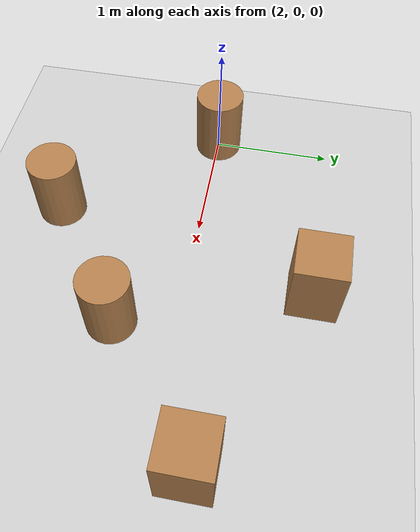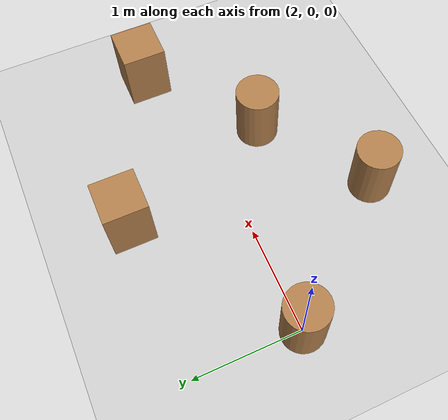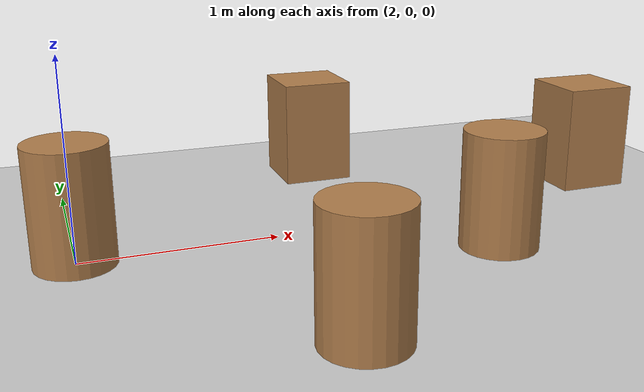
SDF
<?xml version="1.0"?>
<sdf version="1.6">
  <world name="obstacles">
    <include><uri>model://sun</uri></include>
    <include><uri>model://ground_plane</uri></include>
    <model name="obs_0"><static>true</static><pose>2.0 0.0 0.3 0 0 0</pose>
      <link name="l">
        <visual name="v"><geometry><cylinder><radius>0.2</radius><length>0.6</length></cylinder></geometry>
          <material><script><uri>file://media/materials/scripts/gazebo.material</uri><name>Gazebo/Wood</name></script></material></visual>
        <collision name="c"><geometry><cylinder><radius>0.2</radius><length>0.6</length></cylinder></geometry></collision>
      </link></model>
    <model name="obs_1"><static>true</static><pose>3.5 1.0 0.3 0 0 0</pose>
      <link name="l">
        <visual name="v"><geometry><box><size>0.4 0.4 0.6</size></box></geometry>
          <material><script><uri>file://media/materials/scripts/gazebo.material</uri><name>Gazebo/Wood</name></script></material></visual>
        <collision name="c"><geometry><box><size>0.4 0.4 0.6</size></box></geometry></collision>
      </link></model>
    <model name="obs_2"><static>true</static><pose>3.0 -1.2 0.3 0 0 0</pose>
      <link name="l">
        <visual name="v"><geometry><cylinder><radius>0.2</radius><length>0.6</length></cylinder></geometry>
          <material><script><uri>file://media/materials/scripts/gazebo.material</uri><name>Gazebo/Wood</name></script></material></visual>
        <collision name="c"><geometry><cylinder><radius>0.2</radius><length>0.6</length></cylinder></geometry></collision>
      </link></model>
    <model name="obs_3"><static>true</static><pose>5.0 0.3 0.3 0 0 0</pose>
      <link name="l">
        <visual name="v"><geometry><box><size>0.4 0.4 0.6</size></box></geometry>
          <material><script><uri>file://media/materials/scripts/gazebo.material</uri><name>Gazebo/Wood</name></script></material></visual>
        <collision name="c"><geometry><box><size>0.4 0.4 0.6</size></box></geometry></collision>
      </link></model>
    <model name="obs_4"><static>true</static><pose>4.0 -0.5 0.3 0 0 0</pose>
      <link name="l">
        <visual name="v"><geometry><cylinder><radius>0.2</radius><length>0.6</length></cylinder></geometry>
          <material><script><uri>file://media/materials/scripts/gazebo.material</uri><name>Gazebo/Wood</name></script></material></visual>
        <collision name="c"><geometry><cylinder><radius>0.2</radius><length>0.6</length></cylinder></geometry></collision>
      </link></model>
  </world>
</sdf>
